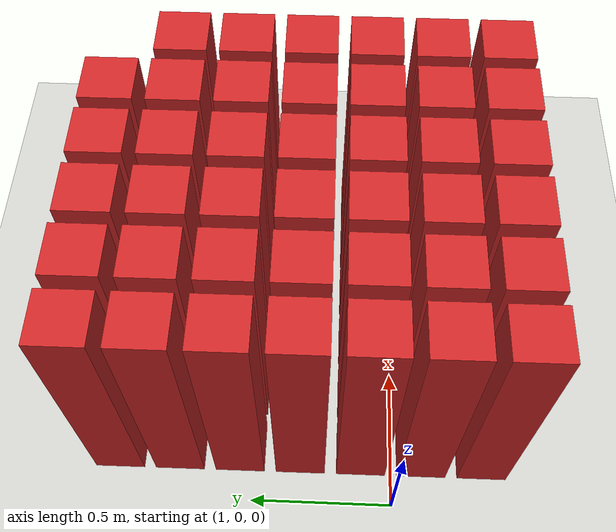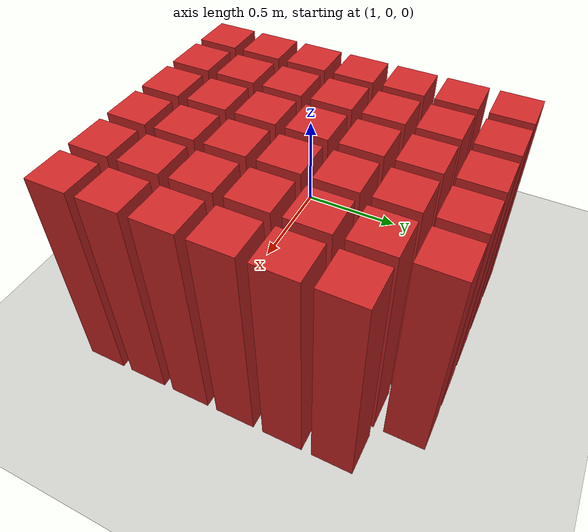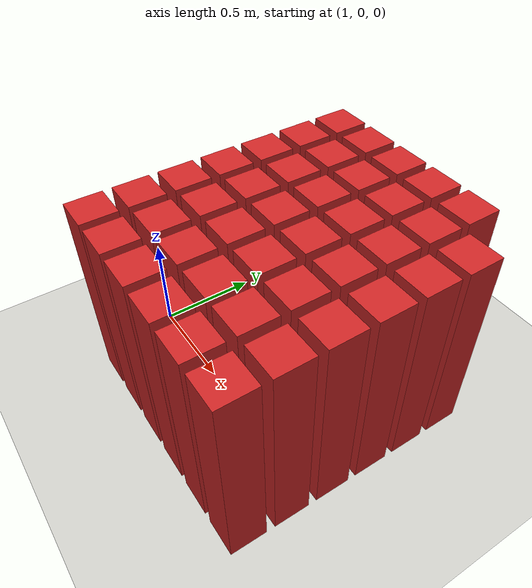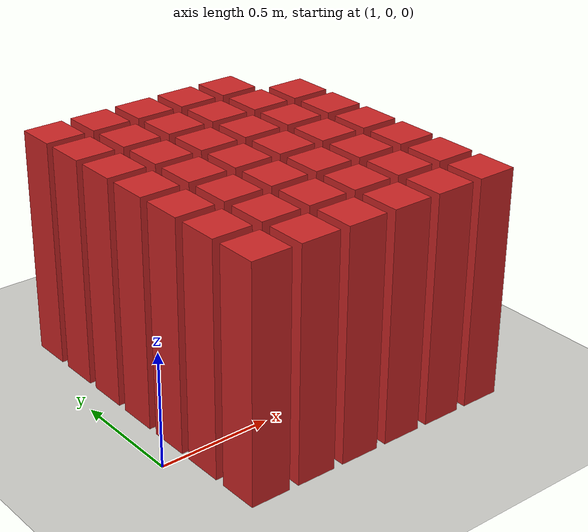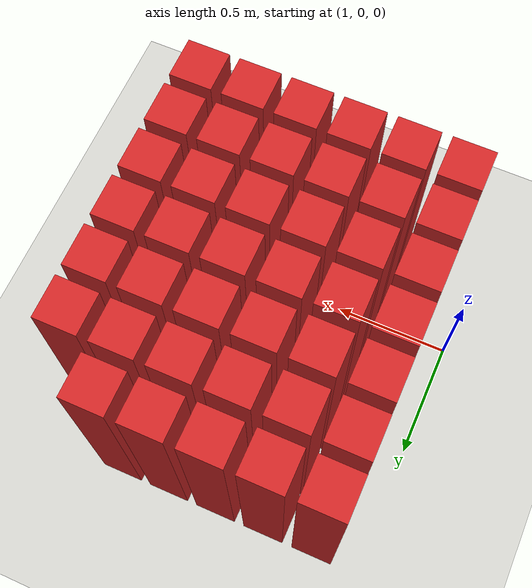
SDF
<sdf version="1.7">
 <world name="default">
  <model name="ground_plane">
   <static>1</static>
   <link name="link">
    <collision name="collision">
     <geometry><plane><normal>0 0 1</normal><size>100 100</size></plane></geometry>
     <surface>
      <contact><collide_bitmask>65535</collide_bitmask></contact>
      <friction><ode><mu>100</mu><mu2>50</mu2></ode></friction>
     </surface>
    </collision>
    <visual name="visual">
     <cast_shadows>0</cast_shadows>
     <geometry><plane><normal>0 0 1</normal><size>100 100</size></plane></geometry>
     <material>
      <script><uri>file://media/materials/scripts/gazebo.material</uri><name>Gazebo/CeilingTiled</name></script>
     </material>
    </visual>
   </link>
  </model>
  <model name="wall247">
   <link name="link">
    <pose>0 0 0.5 0 -0 0</pose>
    <inertial>
     <mass>0.5167</mass>
     <inertia>
      <ixx>0.000861167</ixx>
      <ixy>0</ixy>
      <ixz>0</ixz>
      <iyy>0.000861167</iyy>
      <iyz>0</iyz>
      <izz>0.000861167</izz>
     </inertia>
    </inertial>
    <collision name="collision">
     <geometry><box><size>0.21 0.21 1</size></box></geometry>
     <surface>
      <contact>
       <poissons_ratio>0.347</poissons_ratio>
       <elastic_modulus>8.8e+09</elastic_modulus>
       <ode><kp>100000</kp><kd>100</kd><max_vel>100</max_vel><min_depth>0.001</min_depth></ode>
      </contact>
      <friction>
       <torsional>
        <coefficient>1</coefficient>
        <use_patch_radius>0</use_patch_radius>
        <surface_radius>0.01</surface_radius>
       </torsional>
      </friction>
     </surface>
    </collision>
    <visual name="visual">
     <geometry><box><size>0.175 0.175 1</size></box></geometry>
     <material>
      <script><uri>file://media/materials/scripts/gazebo.material</uri><name>Gazebo/Red</name></script>
     </material>
    </visual>
   </link>
   <pose>1.19565 -0.326087 0 0 -0 0</pose>
  </model>
  <model name="wall248">
   <link name="link">
    <pose>0 0 0.5 0 -0 0</pose>
    <inertial>
     <mass>0.5167</mass>
     <inertia>
      <ixx>0.000861167</ixx>
      <ixy>0</ixy>
      <ixz>0</ixz>
      <iyy>0.000861167</iyy>
      <iyz>0</iyz>
      <izz>0.000861167</izz>
     </inertia>
    </inertial>
    <collision name="collision">
     <geometry><box><size>0.21 0.21 1</size></box></geometry>
     <surface>
      <contact>
       <poissons_ratio>0.347</poissons_ratio>
       <elastic_modulus>8.8e+09</elastic_modulus>
       <ode><kp>100000</kp><kd>100</kd><max_vel>100</max_vel><min_depth>0.001</min_depth></ode>
      </contact>
      <friction>
       <torsional>
        <coefficient>1</coefficient>
        <use_patch_radius>0</use_patch_radius>
        <surface_radius>0.01</surface_radius>
       </torsional>
      </friction>
     </surface>
    </collision>
    <visual name="visual">
     <geometry><box><size>0.175 0.175 1</size></box></geometry>
     <material>
      <script><uri>file://media/materials/scripts/gazebo.material</uri><name>Gazebo/Red</name></script>
     </material>
    </visual>
   </link>
   <pose>1.41304 -0.326087 0 0 -0 0</pose>
  </model>
  <model name="wall249">
   <link name="link">
    <pose>0 0 0.5 0 -0 0</pose>
    <inertial>
     <mass>0.5167</mass>
     <inertia>
      <ixx>0.000861167</ixx>
      <ixy>0</ixy>
      <ixz>0</ixz>
      <iyy>0.000861167</iyy>
      <iyz>0</iyz>
      <izz>0.000861167</izz>
     </inertia>
    </inertial>
    <collision name="collision">
     <geometry><box><size>0.21 0.21 1</size></box></geometry>
     <surface>
      <contact>
       <poissons_ratio>0.347</poissons_ratio>
       <elastic_modulus>8.8e+09</elastic_modulus>
       <ode><kp>100000</kp><kd>100</kd><max_vel>100</max_vel><min_depth>0.001</min_depth></ode>
      </contact>
      <friction>
       <torsional>
        <coefficient>1</coefficient>
        <use_patch_radius>0</use_patch_radius>
        <surface_radius>0.01</surface_radius>
       </torsional>
      </friction>
     </surface>
    </collision>
    <visual name="visual">
     <geometry><box><size>0.175 0.175 1</size></box></geometry>
     <material>
      <script><uri>file://media/materials/scripts/gazebo.material</uri><name>Gazebo/Red</name></script>
     </material>
    </visual>
   </link>
   <pose>1.63043 -0.326087 0 0 -0 0</pose>
  </model>
  <model name="wall250">
   <link name="link">
    <pose>0 0 0.5 0 -0 0</pose>
    <inertial>
     <mass>0.5167</mass>
     <inertia>
      <ixx>0.000861167</ixx>
      <ixy>0</ixy>
      <ixz>0</ixz>
      <iyy>0.000861167</iyy>
      <iyz>0</iyz>
      <izz>0.000861167</izz>
     </inertia>
    </inertial>
    <collision name="collision">
     <geometry><box><size>0.21 0.21 1</size></box></geometry>
     <surface>
      <contact>
       <poissons_ratio>0.347</poissons_ratio>
       <elastic_modulus>8.8e+09</elastic_modulus>
       <ode><kp>100000</kp><kd>100</kd><max_vel>100</max_vel><min_depth>0.001</min_depth></ode>
      </contact>
      <friction>
       <torsional>
        <coefficient>1</coefficient>
        <use_patch_radius>0</use_patch_radius>
        <surface_radius>0.01</surface_radius>
       </torsional>
      </friction>
     </surface>
    </collision>
    <visual name="visual">
     <geometry><box><size>0.175 0.175 1</size></box></geometry>
     <material>
      <script><uri>file://media/materials/scripts/gazebo.material</uri><name>Gazebo/Red</name></script>
     </material>
    </visual>
   </link>
   <pose>1.84783 -0.326087 0 0 -0 0</pose>
  </model>
  <model name="wall251">
   <link name="link">
    <pose>0 0 0.5 0 -0 0</pose>
    <inertial>
     <mass>0.5167</mass>
     <inertia>
      <ixx>0.000861167</ixx>
      <ixy>0</ixy>
      <ixz>0</ixz>
      <iyy>0.000861167</iyy>
      <iyz>0</iyz>
      <izz>0.000861167</izz>
     </inertia>
    </inertial>
    <collision name="collision">
     <geometry><box><size>0.21 0.21 1</size></box></geometry>
     <surface>
      <contact>
       <poissons_ratio>0.347</poissons_ratio>
       <elastic_modulus>8.8e+09</elastic_modulus>
       <ode><kp>100000</kp><kd>100</kd><max_vel>100</max_vel><min_depth>0.001</min_depth></ode>
      </contact>
      <friction>
       <torsional>
        <coefficient>1</coefficient>
        <use_patch_radius>0</use_patch_radius>
        <surface_radius>0.01</surface_radius>
       </torsional>
      </friction>
     </surface>
    </collision>
    <visual name="visual">
     <geometry><box><size>0.175 0.175 1</size></box></geometry>
     <material>
      <script><uri>file://media/materials/scripts/gazebo.material</uri><name>Gazebo/Red</name></script>
     </material>
    </visual>
   </link>
   <pose>2.06522 -0.326087 0 0 -0 0</pose>
  </model>
  <model name="wall252">
   <link name="link">
    <pose>0 0 0.5 0 -0 0</pose>
    <inertial>
     <mass>0.5167</mass>
     <inertia>
      <ixx>0.000861167</ixx>
      <ixy>0</ixy>
      <ixz>0</ixz>
      <iyy>0.000861167</iyy>
      <iyz>0</iyz>
      <izz>0.000861167</izz>
     </inertia>
    </inertial>
    <collision name="collision">
     <geometry><box><size>0.21 0.21 1</size></box></geometry>
     <surface>
      <contact>
       <poissons_ratio>0.347</poissons_ratio>
       <elastic_modulus>8.8e+09</elastic_modulus>
       <ode><kp>100000</kp><kd>100</kd><max_vel>100</max_vel><min_depth>0.001</min_depth></ode>
      </contact>
      <friction>
       <torsional>
        <coefficient>1</coefficient>
        <use_patch_radius>0</use_patch_radius>
        <surface_radius>0.01</surface_radius>
       </torsional>
      </friction>
     </surface>
    </collision>
    <visual name="visual">
     <geometry><box><size>0.175 0.175 1</size></box></geometry>
     <material>
      <script><uri>file://media/materials/scripts/gazebo.material</uri><name>Gazebo/Red</name></script>
     </material>
    </visual>
   </link>
   <pose>2.28261 -0.326087 0 0 -0 0</pose>
  </model>
  <model name="wall270">
   <link name="link">
    <pose>0 0 0.5 0 -0 0</pose>
    <inertial>
     <mass>0.5167</mass>
     <inertia>
      <ixx>0.000861167</ixx>
      <ixy>0</ixy>
      <ixz>0</ixz>
      <iyy>0.000861167</iyy>
      <iyz>0</iyz>
      <izz>0.000861167</izz>
     </inertia>
    </inertial>
    <collision name="collision">
     <geometry><box><size>0.21 0.21 1</size></box></geometry>
     <surface>
      <contact>
       <poissons_ratio>0.347</poissons_ratio>
       <elastic_modulus>8.8e+09</elastic_modulus>
       <ode><kp>100000</kp><kd>100</kd><max_vel>100</max_vel><min_depth>0.001</min_depth></ode>
      </contact>
      <friction>
       <torsional>
        <coefficient>1</coefficient>
        <use_patch_radius>0</use_patch_radius>
        <surface_radius>0.01</surface_radius>
       </torsional>
      </friction>
     </surface>
    </collision>
    <visual name="visual">
     <geometry><box><size>0.175 0.175 1</size></box></geometry>
     <material>
      <script><uri>file://media/materials/scripts/gazebo.material</uri><name>Gazebo/Red</name></script>
     </material>
    </visual>
   </link>
   <pose>1.19565 -0.108696 0 0 -0 0</pose>
  </model>
  <model name="wall271">
   <link name="link">
    <pose>0 0 0.5 0 -0 0</pose>
    <inertial>
     <mass>0.5167</mass>
     <inertia>
      <ixx>0.000861167</ixx>
      <ixy>0</ixy>
      <ixz>0</ixz>
      <iyy>0.000861167</iyy>
      <iyz>0</iyz>
      <izz>0.000861167</izz>
     </inertia>
    </inertial>
    <collision name="collision">
     <geometry><box><size>0.21 0.21 1</size></box></geometry>
     <surface>
      <contact>
       <poissons_ratio>0.347</poissons_ratio>
       <elastic_modulus>8.8e+09</elastic_modulus>
       <ode><kp>100000</kp><kd>100</kd><max_vel>100</max_vel><min_depth>0.001</min_depth></ode>
      </contact>
      <friction>
       <torsional>
        <coefficient>1</coefficient>
        <use_patch_radius>0</use_patch_radius>
        <surface_radius>0.01</surface_radius>
       </torsional>
      </friction>
     </surface>
    </collision>
    <visual name="visual">
     <geometry><box><size>0.175 0.175 1</size></box></geometry>
     <material>
      <script><uri>file://media/materials/scripts/gazebo.material</uri><name>Gazebo/Red</name></script>
     </material>
    </visual>
   </link>
   <pose>1.41304 -0.108696 0 0 -0 0</pose>
  </model>
  <model name="wall272">
   <link name="link">
    <pose>0 0 0.5 0 -0 0</pose>
    <inertial>
     <mass>0.5167</mass>
     <inertia>
      <ixx>0.000861167</ixx>
      <ixy>0</ixy>
      <ixz>0</ixz>
      <iyy>0.000861167</iyy>
      <iyz>0</iyz>
      <izz>0.000861167</izz>
     </inertia>
    </inertial>
    <collision name="collision">
     <geometry><box><size>0.21 0.21 1</size></box></geometry>
     <surface>
      <contact>
       <poissons_ratio>0.347</poissons_ratio>
       <elastic_modulus>8.8e+09</elastic_modulus>
       <ode><kp>100000</kp><kd>100</kd><max_vel>100</max_vel><min_depth>0.001</min_depth></ode>
      </contact>
      <friction>
       <torsional>
        <coefficient>1</coefficient>
        <use_patch_radius>0</use_patch_radius>
        <surface_radius>0.01</surface_radius>
       </torsional>
      </friction>
     </surface>
    </collision>
    <visual name="visual">
     <geometry><box><size>0.175 0.175 1</size></box></geometry>
     <material>
      <script><uri>file://media/materials/scripts/gazebo.material</uri><name>Gazebo/Red</name></script>
     </material>
    </visual>
   </link>
   <pose>1.63043 -0.108696 0 0 -0 0</pose>
  </model>
  <model name="wall273">
   <link name="link">
    <pose>0 0 0.5 0 -0 0</pose>
    <inertial>
     <mass>0.5167</mass>
     <inertia>
      <ixx>0.000861167</ixx>
      <ixy>0</ixy>
      <ixz>0</ixz>
      <iyy>0.000861167</iyy>
      <iyz>0</iyz>
      <izz>0.000861167</izz>
     </inertia>
    </inertial>
    <collision name="collision">
     <geometry><box><size>0.21 0.21 1</size></box></geometry>
     <surface>
      <contact>
       <poissons_ratio>0.347</poissons_ratio>
       <elastic_modulus>8.8e+09</elastic_modulus>
       <ode><kp>100000</kp><kd>100</kd><max_vel>100</max_vel><min_depth>0.001</min_depth></ode>
      </contact>
      <friction>
       <torsional>
        <coefficient>1</coefficient>
        <use_patch_radius>0</use_patch_radius>
        <surface_radius>0.01</surface_radius>
       </torsional>
      </friction>
     </surface>
    </collision>
    <visual name="visual">
     <geometry><box><size>0.175 0.175 1</size></box></geometry>
     <material>
      <script><uri>file://media/materials/scripts/gazebo.material</uri><name>Gazebo/Red</name></script>
     </material>
    </visual>
   </link>
   <pose>1.84783 -0.108696 0 0 -0 0</pose>
  </model>
  <model name="wall274">
   <link name="link">
    <pose>0 0 0.5 0 -0 0</pose>
    <inertial>
     <mass>0.5167</mass>
     <inertia>
      <ixx>0.000861167</ixx>
      <ixy>0</ixy>
      <ixz>0</ixz>
      <iyy>0.000861167</iyy>
      <iyz>0</iyz>
      <izz>0.000861167</izz>
     </inertia>
    </inertial>
    <collision name="collision">
     <geometry><box><size>0.21 0.21 1</size></box></geometry>
     <surface>
      <contact>
       <poissons_ratio>0.347</poissons_ratio>
       <elastic_modulus>8.8e+09</elastic_modulus>
       <ode><kp>100000</kp><kd>100</kd><max_vel>100</max_vel><min_depth>0.001</min_depth></ode>
      </contact>
      <friction>
       <torsional>
        <coefficient>1</coefficient>
        <use_patch_radius>0</use_patch_radius>
        <surface_radius>0.01</surface_radius>
       </torsional>
      </friction>
     </surface>
    </collision>
    <visual name="visual">
     <geometry><box><size>0.175 0.175 1</size></box></geometry>
     <material>
      <script><uri>file://media/materials/scripts/gazebo.material</uri><name>Gazebo/Red</name></script>
     </material>
    </visual>
   </link>
   <pose>2.06522 -0.108696 0 0 -0 0</pose>
  </model>
  <model name="wall275">
   <link name="link">
    <pose>0 0 0.5 0 -0 0</pose>
    <inertial>
     <mass>0.5167</mass>
     <inertia>
      <ixx>0.000861167</ixx>
      <ixy>0</ixy>
      <ixz>0</ixz>
      <iyy>0.000861167</iyy>
      <iyz>0</iyz>
      <izz>0.000861167</izz>
     </inertia>
    </inertial>
    <collision name="collision">
     <geometry><box><size>0.21 0.21 1</size></box></geometry>
     <surface>
      <contact>
       <poissons_ratio>0.347</poissons_ratio>
       <elastic_modulus>8.8e+09</elastic_modulus>
       <ode><kp>100000</kp><kd>100</kd><max_vel>100</max_vel><min_depth>0.001</min_depth></ode>
      </contact>
      <friction>
       <torsional>
        <coefficient>1</coefficient>
        <use_patch_radius>0</use_patch_radius>
        <surface_radius>0.01</surface_radius>
       </torsional>
      </friction>
     </surface>
    </collision>
    <visual name="visual">
     <geometry><box><size>0.175 0.175 1</size></box></geometry>
     <material>
      <script><uri>file://media/materials/scripts/gazebo.material</uri><name>Gazebo/Red</name></script>
     </material>
    </visual>
   </link>
   <pose>2.28261 -0.108696 0 0 -0 0</pose>
  </model>
  <model name="wall293">
   <link name="link">
    <pose>0 0 0.5 0 -0 0</pose>
    <inertial>
     <mass>0.5167</mass>
     <inertia>
      <ixx>0.000861167</ixx>
      <ixy>0</ixy>
      <ixz>0</ixz>
      <iyy>0.000861167</iyy>
      <iyz>0</iyz>
      <izz>0.000861167</izz>
     </inertia>
    </inertial>
    <collision name="collision">
     <geometry><box><size>0.21 0.21 1</size></box></geometry>
     <surface>
      <contact>
       <poissons_ratio>0.347</poissons_ratio>
       <elastic_modulus>8.8e+09</elastic_modulus>
       <ode><kp>100000</kp><kd>100</kd><max_vel>100</max_vel><min_depth>0.001</min_depth></ode>
      </contact>
      <friction>
       <torsional>
        <coefficient>1</coefficient>
        <use_patch_radius>0</use_patch_radius>
        <surface_radius>0.01</surface_radius>
       </torsional>
      </friction>
     </surface>
    </collision>
    <visual name="visual">
     <geometry><box><size>0.175 0.175 1</size></box></geometry>
     <material>
      <script><uri>file://media/materials/scripts/gazebo.material</uri><name>Gazebo/Red</name></script>
     </material>
    </visual>
   </link>
   <pose>1.19565 0.108696 0 0 -0 0</pose>
  </model>
  <model name="wall294">
   <link name="link">
    <pose>0 0 0.5 0 -0 0</pose>
    <inertial>
     <mass>0.5167</mass>
     <inertia>
      <ixx>0.000861167</ixx>
      <ixy>0</ixy>
      <ixz>0</ixz>
      <iyy>0.000861167</iyy>
      <iyz>0</iyz>
      <izz>0.000861167</izz>
     </inertia>
    </inertial>
    <collision name="collision">
     <geometry><box><size>0.21 0.21 1</size></box></geometry>
     <surface>
      <contact>
       <poissons_ratio>0.347</poissons_ratio>
       <elastic_modulus>8.8e+09</elastic_modulus>
       <ode><kp>100000</kp><kd>100</kd><max_vel>100</max_vel><min_depth>0.001</min_depth></ode>
      </contact>
      <friction>
       <torsional>
        <coefficient>1</coefficient>
        <use_patch_radius>0</use_patch_radius>
        <surface_radius>0.01</surface_radius>
       </torsional>
      </friction>
     </surface>
    </collision>
    <visual name="visual">
     <geometry><box><size>0.175 0.175 1</size></box></geometry>
     <material>
      <script><uri>file://media/materials/scripts/gazebo.material</uri><name>Gazebo/Red</name></script>
     </material>
    </visual>
   </link>
   <pose>1.41304 0.108696 0 0 -0 0</pose>
  </model>
  <model name="wall295">
   <link name="link">
    <pose>0 0 0.5 0 -0 0</pose>
    <inertial>
     <mass>0.5167</mass>
     <inertia>
      <ixx>0.000861167</ixx>
      <ixy>0</ixy>
      <ixz>0</ixz>
      <iyy>0.000861167</iyy>
      <iyz>0</iyz>
      <izz>0.000861167</izz>
     </inertia>
    </inertial>
    <collision name="collision">
     <geometry><box><size>0.21 0.21 1</size></box></geometry>
     <surface>
      <contact>
       <poissons_ratio>0.347</poissons_ratio>
       <elastic_modulus>8.8e+09</elastic_modulus>
       <ode><kp>100000</kp><kd>100</kd><max_vel>100</max_vel><min_depth>0.001</min_depth></ode>
      </contact>
      <friction>
       <torsional>
        <coefficient>1</coefficient>
        <use_patch_radius>0</use_patch_radius>
        <surface_radius>0.01</surface_radius>
       </torsional>
      </friction>
     </surface>
    </collision>
    <visual name="visual">
     <geometry><box><size>0.175 0.175 1</size></box></geometry>
     <material>
      <script><uri>file://media/materials/scripts/gazebo.material</uri><name>Gazebo/Red</name></script>
     </material>
    </visual>
   </link>
   <pose>1.63043 0.108696 0 0 -0 0</pose>
  </model>
  <model name="wall296">
   <link name="link">
    <pose>0 0 0.5 0 -0 0</pose>
    <inertial>
     <mass>0.5167</mass>
     <inertia>
      <ixx>0.000861167</ixx>
      <ixy>0</ixy>
      <ixz>0</ixz>
      <iyy>0.000861167</iyy>
      <iyz>0</iyz>
      <izz>0.000861167</izz>
     </inertia>
    </inertial>
    <collision name="collision">
     <geometry><box><size>0.21 0.21 1</size></box></geometry>
     <surface>
      <contact>
       <poissons_ratio>0.347</poissons_ratio>
       <elastic_modulus>8.8e+09</elastic_modulus>
       <ode><kp>100000</kp><kd>100</kd><max_vel>100</max_vel><min_depth>0.001</min_depth></ode>
      </contact>
      <friction>
       <torsional>
        <coefficient>1</coefficient>
        <use_patch_radius>0</use_patch_radius>
        <surface_radius>0.01</surface_radius>
       </torsional>
      </friction>
     </surface>
    </collision>
    <visual name="visual">
     <geometry><box><size>0.175 0.175 1</size></box></geometry>
     <material>
      <script><uri>file://media/materials/scripts/gazebo.material</uri><name>Gazebo/Red</name></script>
     </material>
    </visual>
   </link>
   <pose>1.84783 0.108696 0 0 -0 0</pose>
  </model>
  <model name="wall297">
   <link name="link">
    <pose>0 0 0.5 0 -0 0</pose>
    <inertial>
     <mass>0.5167</mass>
     <inertia>
      <ixx>0.000861167</ixx>
      <ixy>0</ixy>
      <ixz>0</ixz>
      <iyy>0.000861167</iyy>
      <iyz>0</iyz>
      <izz>0.000861167</izz>
     </inertia>
    </inertial>
    <collision name="collision">
     <geometry><box><size>0.21 0.21 1</size></box></geometry>
     <surface>
      <contact>
       <poissons_ratio>0.347</poissons_ratio>
       <elastic_modulus>8.8e+09</elastic_modulus>
       <ode><kp>100000</kp><kd>100</kd><max_vel>100</max_vel><min_depth>0.001</min_depth></ode>
      </contact>
      <friction>
       <torsional>
        <coefficient>1</coefficient>
        <use_patch_radius>0</use_patch_radius>
        <surface_radius>0.01</surface_radius>
       </torsional>
      </friction>
     </surface>
    </collision>
    <visual name="visual">
     <geometry><box><size>0.175 0.175 1</size></box></geometry>
     <material>
      <script><uri>file://media/materials/scripts/gazebo.material</uri><name>Gazebo/Red</name></script>
     </material>
    </visual>
   </link>
   <pose>2.06522 0.108696 0 0 -0 0</pose>
  </model>
  <model name="wall298">
   <link name="link">
    <pose>0 0 0.5 0 -0 0</pose>
    <inertial>
     <mass>0.5167</mass>
     <inertia>
      <ixx>0.000861167</ixx>
      <ixy>0</ixy>
      <ixz>0</ixz>
      <iyy>0.000861167</iyy>
      <iyz>0</iyz>
      <izz>0.000861167</izz>
     </inertia>
    </inertial>
    <collision name="collision">
     <geometry><box><size>0.21 0.21 1</size></box></geometry>
     <surface>
      <contact>
       <poissons_ratio>0.347</poissons_ratio>
       <elastic_modulus>8.8e+09</elastic_modulus>
       <ode><kp>100000</kp><kd>100</kd><max_vel>100</max_vel><min_depth>0.001</min_depth></ode>
      </contact>
      <friction>
       <torsional>
        <coefficient>1</coefficient>
        <use_patch_radius>0</use_patch_radius>
        <surface_radius>0.01</surface_radius>
       </torsional>
      </friction>
     </surface>
    </collision>
    <visual name="visual">
     <geometry><box><size>0.175 0.175 1</size></box></geometry>
     <material>
      <script><uri>file://media/materials/scripts/gazebo.material</uri><name>Gazebo/Red</name></script>
     </material>
    </visual>
   </link>
   <pose>2.28261 0.108696 0 0 -0 0</pose>
  </model>
  <model name="wall316">
   <link name="link">
    <pose>0 0 0.5 0 -0 0</pose>
    <inertial>
     <mass>0.5167</mass>
     <inertia>
      <ixx>0.000861167</ixx>
      <ixy>0</ixy>
      <ixz>0</ixz>
      <iyy>0.000861167</iyy>
      <iyz>0</iyz>
      <izz>0.000861167</izz>
     </inertia>
    </inertial>
    <collision name="collision">
     <geometry><box><size>0.21 0.21 1</size></box></geometry>
     <surface>
      <contact>
       <poissons_ratio>0.347</poissons_ratio>
       <elastic_modulus>8.8e+09</elastic_modulus>
       <ode><kp>100000</kp><kd>100</kd><max_vel>100</max_vel><min_depth>0.001</min_depth></ode>
      </contact>
      <friction>
       <torsional>
        <coefficient>1</coefficient>
        <use_patch_radius>0</use_patch_radius>
        <surface_radius>0.01</surface_radius>
       </torsional>
      </friction>
     </surface>
    </collision>
    <visual name="visual">
     <geometry><box><size>0.175 0.175 1</size></box></geometry>
     <material>
      <script><uri>file://media/materials/scripts/gazebo.material</uri><name>Gazebo/Red</name></script>
     </material>
    </visual>
   </link>
   <pose>1.19565 0.326087 0 0 -0 0</pose>
  </model>
  <model name="wall317">
   <link name="link">
    <pose>0 0 0.5 0 -0 0</pose>
    <inertial>
     <mass>0.5167</mass>
     <inertia>
      <ixx>0.000861167</ixx>
      <ixy>0</ixy>
      <ixz>0</ixz>
      <iyy>0.000861167</iyy>
      <iyz>0</iyz>
      <izz>0.000861167</izz>
     </inertia>
    </inertial>
    <collision name="collision">
     <geometry><box><size>0.21 0.21 1</size></box></geometry>
     <surface>
      <contact>
       <poissons_ratio>0.347</poissons_ratio>
       <elastic_modulus>8.8e+09</elastic_modulus>
       <ode><kp>100000</kp><kd>100</kd><max_vel>100</max_vel><min_depth>0.001</min_depth></ode>
      </contact>
      <friction>
       <torsional>
        <coefficient>1</coefficient>
        <use_patch_radius>0</use_patch_radius>
        <surface_radius>0.01</surface_radius>
       </torsional>
      </friction>
     </surface>
    </collision>
    <visual name="visual">
     <geometry><box><size>0.175 0.175 1</size></box></geometry>
     <material>
      <script><uri>file://media/materials/scripts/gazebo.material</uri><name>Gazebo/Red</name></script>
     </material>
    </visual>
   </link>
   <pose>1.41304 0.326087 0 0 -0 0</pose>
  </model>
  <model name="wall318">
   <link name="link">
    <pose>0 0 0.5 0 -0 0</pose>
    <inertial>
     <mass>0.5167</mass>
     <inertia>
      <ixx>0.000861167</ixx>
      <ixy>0</ixy>
      <ixz>0</ixz>
      <iyy>0.000861167</iyy>
      <iyz>0</iyz>
      <izz>0.000861167</izz>
     </inertia>
    </inertial>
    <collision name="collision">
     <geometry><box><size>0.21 0.21 1</size></box></geometry>
     <surface>
      <contact>
       <poissons_ratio>0.347</poissons_ratio>
       <elastic_modulus>8.8e+09</elastic_modulus>
       <ode><kp>100000</kp><kd>100</kd><max_vel>100</max_vel><min_depth>0.001</min_depth></ode>
      </contact>
      <friction>
       <torsional>
        <coefficient>1</coefficient>
        <use_patch_radius>0</use_patch_radius>
        <surface_radius>0.01</surface_radius>
       </torsional>
      </friction>
     </surface>
    </collision>
    <visual name="visual">
     <geometry><box><size>0.175 0.175 1</size></box></geometry>
     <material>
      <script><uri>file://media/materials/scripts/gazebo.material</uri><name>Gazebo/Red</name></script>
     </material>
    </visual>
   </link>
   <pose>1.63043 0.326087 0 0 -0 0</pose>
  </model>
  <model name="wall319">
   <link name="link">
    <pose>0 0 0.5 0 -0 0</pose>
    <inertial>
     <mass>0.5167</mass>
     <inertia>
      <ixx>0.000861167</ixx>
      <ixy>0</ixy>
      <ixz>0</ixz>
      <iyy>0.000861167</iyy>
      <iyz>0</iyz>
      <izz>0.000861167</izz>
     </inertia>
    </inertial>
    <collision name="collision">
     <geometry><box><size>0.21 0.21 1</size></box></geometry>
     <surface>
      <contact>
       <poissons_ratio>0.347</poissons_ratio>
       <elastic_modulus>8.8e+09</elastic_modulus>
       <ode><kp>100000</kp><kd>100</kd><max_vel>100</max_vel><min_depth>0.001</min_depth></ode>
      </contact>
      <friction>
       <torsional>
        <coefficient>1</coefficient>
        <use_patch_radius>0</use_patch_radius>
        <surface_radius>0.01</surface_radius>
       </torsional>
      </friction>
     </surface>
    </collision>
    <visual name="visual">
     <geometry><box><size>0.175 0.175 1</size></box></geometry>
     <material>
      <script><uri>file://media/materials/scripts/gazebo.material</uri><name>Gazebo/Red</name></script>
     </material>
    </visual>
   </link>
   <pose>1.84783 0.326087 0 0 -0 0</pose>
  </model>
  <model name="wall320">
   <link name="link">
    <pose>0 0 0.5 0 -0 0</pose>
    <inertial>
     <mass>0.5167</mass>
     <inertia>
      <ixx>0.000861167</ixx>
      <ixy>0</ixy>
      <ixz>0</ixz>
      <iyy>0.000861167</iyy>
      <iyz>0</iyz>
      <izz>0.000861167</izz>
     </inertia>
    </inertial>
    <collision name="collision">
     <geometry><box><size>0.21 0.21 1</size></box></geometry>
     <surface>
      <contact>
       <poissons_ratio>0.347</poissons_ratio>
       <elastic_modulus>8.8e+09</elastic_modulus>
       <ode><kp>100000</kp><kd>100</kd><max_vel>100</max_vel><min_depth>0.001</min_depth></ode>
      </contact>
      <friction>
       <torsional>
        <coefficient>1</coefficient>
        <use_patch_radius>0</use_patch_radius>
        <surface_radius>0.01</surface_radius>
       </torsional>
      </friction>
     </surface>
    </collision>
    <visual name="visual">
     <geometry><box><size>0.175 0.175 1</size></box></geometry>
     <material>
      <script><uri>file://media/materials/scripts/gazebo.material</uri><name>Gazebo/Red</name></script>
     </material>
    </visual>
   </link>
   <pose>2.06522 0.326087 0 0 -0 0</pose>
  </model>
  <model name="wall321">
   <link name="link">
    <pose>0 0 0.5 0 -0 0</pose>
    <inertial>
     <mass>0.5167</mass>
     <inertia>
      <ixx>0.000861167</ixx>
      <ixy>0</ixy>
      <ixz>0</ixz>
      <iyy>0.000861167</iyy>
      <iyz>0</iyz>
      <izz>0.000861167</izz>
     </inertia>
    </inertial>
    <collision name="collision">
     <geometry><box><size>0.21 0.21 1</size></box></geometry>
     <surface>
      <contact>
       <poissons_ratio>0.347</poissons_ratio>
       <elastic_modulus>8.8e+09</elastic_modulus>
       <ode><kp>100000</kp><kd>100</kd><max_vel>100</max_vel><min_depth>0.001</min_depth></ode>
      </contact>
      <friction>
       <torsional>
        <coefficient>1</coefficient>
        <use_patch_radius>0</use_patch_radius>
        <surface_radius>0.01</surface_radius>
       </torsional>
      </friction>
     </surface>
    </collision>
    <visual name="visual">
     <geometry><box><size>0.175 0.175 1</size></box></geometry>
     <material>
      <script><uri>file://media/materials/scripts/gazebo.material</uri><name>Gazebo/Red</name></script>
     </material>
    </visual>
   </link>
   <pose>2.28261 0.326087 0 0 -0 0</pose>
  </model>
  <model name="wall339">
   <link name="link">
    <pose>0 0 0.5 0 -0 0</pose>
    <inertial>
     <mass>0.5167</mass>
     <inertia>
      <ixx>0.000861167</ixx>
      <ixy>0</ixy>
      <ixz>0</ixz>
      <iyy>0.000861167</iyy>
      <iyz>0</iyz>
      <izz>0.000861167</izz>
     </inertia>
    </inertial>
    <collision name="collision">
     <geometry><box><size>0.21 0.21 1</size></box></geometry>
     <surface>
      <contact>
       <poissons_ratio>0.347</poissons_ratio>
       <elastic_modulus>8.8e+09</elastic_modulus>
       <ode><kp>100000</kp><kd>100</kd><max_vel>100</max_vel><min_depth>0.001</min_depth></ode>
      </contact>
      <friction>
       <torsional>
        <coefficient>1</coefficient>
        <use_patch_radius>0</use_patch_radius>
        <surface_radius>0.01</surface_radius>
       </torsional>
      </friction>
     </surface>
    </collision>
    <visual name="visual">
     <geometry><box><size>0.175 0.175 1</size></box></geometry>
     <material>
      <script><uri>file://media/materials/scripts/gazebo.material</uri><name>Gazebo/Red</name></script>
     </material>
    </visual>
   </link>
   <pose>1.19565 0.543478 0 0 -0 0</pose>
  </model>
  <model name="wall340">
   <link name="link">
    <pose>0 0 0.5 0 -0 0</pose>
    <inertial>
     <mass>0.5167</mass>
     <inertia>
      <ixx>0.000861167</ixx>
      <ixy>0</ixy>
      <ixz>0</ixz>
      <iyy>0.000861167</iyy>
      <iyz>0</iyz>
      <izz>0.000861167</izz>
     </inertia>
    </inertial>
    <collision name="collision">
     <geometry><box><size>0.21 0.21 1</size></box></geometry>
     <surface>
      <contact>
       <poissons_ratio>0.347</poissons_ratio>
       <elastic_modulus>8.8e+09</elastic_modulus>
       <ode><kp>100000</kp><kd>100</kd><max_vel>100</max_vel><min_depth>0.001</min_depth></ode>
      </contact>
      <friction>
       <torsional>
        <coefficient>1</coefficient>
        <use_patch_radius>0</use_patch_radius>
        <surface_radius>0.01</surface_radius>
       </torsional>
      </friction>
     </surface>
    </collision>
    <visual name="visual">
     <geometry><box><size>0.175 0.175 1</size></box></geometry>
     <material>
      <script><uri>file://media/materials/scripts/gazebo.material</uri><name>Gazebo/Red</name></script>
     </material>
    </visual>
   </link>
   <pose>1.41304 0.543478 0 0 -0 0</pose>
  </model>
  <model name="wall341">
   <link name="link">
    <pose>0 0 0.5 0 -0 0</pose>
    <inertial>
     <mass>0.5167</mass>
     <inertia>
      <ixx>0.000861167</ixx>
      <ixy>0</ixy>
      <ixz>0</ixz>
      <iyy>0.000861167</iyy>
      <iyz>0</iyz>
      <izz>0.000861167</izz>
     </inertia>
    </inertial>
    <collision name="collision">
     <geometry><box><size>0.21 0.21 1</size></box></geometry>
     <surface>
      <contact>
       <poissons_ratio>0.347</poissons_ratio>
       <elastic_modulus>8.8e+09</elastic_modulus>
       <ode><kp>100000</kp><kd>100</kd><max_vel>100</max_vel><min_depth>0.001</min_depth></ode>
      </contact>
      <friction>
       <torsional>
        <coefficient>1</coefficient>
        <use_patch_radius>0</use_patch_radius>
        <surface_radius>0.01</surface_radius>
       </torsional>
      </friction>
     </surface>
    </collision>
    <visual name="visual">
     <geometry><box><size>0.175 0.175 1</size></box></geometry>
     <material>
      <script><uri>file://media/materials/scripts/gazebo.material</uri><name>Gazebo/Red</name></script>
     </material>
    </visual>
   </link>
   <pose>1.63043 0.543478 0 0 -0 0</pose>
  </model>
  <model name="wall342">
   <link name="link">
    <pose>0 0 0.5 0 -0 0</pose>
    <inertial>
     <mass>0.5167</mass>
     <inertia>
      <ixx>0.000861167</ixx>
      <ixy>0</ixy>
      <ixz>0</ixz>
      <iyy>0.000861167</iyy>
      <iyz>0</iyz>
      <izz>0.000861167</izz>
     </inertia>
    </inertial>
    <collision name="collision">
     <geometry><box><size>0.21 0.21 1</size></box></geometry>
     <surface>
      <contact>
       <poissons_ratio>0.347</poissons_ratio>
       <elastic_modulus>8.8e+09</elastic_modulus>
       <ode><kp>100000</kp><kd>100</kd><max_vel>100</max_vel><min_depth>0.001</min_depth></ode>
      </contact>
      <friction>
       <torsional>
        <coefficient>1</coefficient>
        <use_patch_radius>0</use_patch_radius>
        <surface_radius>0.01</surface_radius>
       </torsional>
      </friction>
     </surface>
    </collision>
    <visual name="visual">
     <geometry><box><size>0.175 0.175 1</size></box></geometry>
     <material>
      <script><uri>file://media/materials/scripts/gazebo.material</uri><name>Gazebo/Red</name></script>
     </material>
    </visual>
   </link>
   <pose>1.84783 0.543478 0 0 -0 0</pose>
  </model>
  <model name="wall343">
   <link name="link">
    <pose>0 0 0.5 0 -0 0</pose>
    <inertial>
     <mass>0.5167</mass>
     <inertia>
      <ixx>0.000861167</ixx>
      <ixy>0</ixy>
      <ixz>0</ixz>
      <iyy>0.000861167</iyy>
      <iyz>0</iyz>
      <izz>0.000861167</izz>
     </inertia>
    </inertial>
    <collision name="collision">
     <geometry><box><size>0.21 0.21 1</size></box></geometry>
     <surface>
      <contact>
       <poissons_ratio>0.347</poissons_ratio>
       <elastic_modulus>8.8e+09</elastic_modulus>
       <ode><kp>100000</kp><kd>100</kd><max_vel>100</max_vel><min_depth>0.001</min_depth></ode>
      </contact>
      <friction>
       <torsional>
        <coefficient>1</coefficient>
        <use_patch_radius>0</use_patch_radius>
        <surface_radius>0.01</surface_radius>
       </torsional>
      </friction>
     </surface>
    </collision>
    <visual name="visual">
     <geometry><box><size>0.175 0.175 1</size></box></geometry>
     <material>
      <script><uri>file://media/materials/scripts/gazebo.material</uri><name>Gazebo/Red</name></script>
     </material>
    </visual>
   </link>
   <pose>2.06522 0.543478 0 0 -0 0</pose>
  </model>
  <model name="wall344">
   <link name="link">
    <pose>0 0 0.5 0 -0 0</pose>
    <inertial>
     <mass>0.5167</mass>
     <inertia>
      <ixx>0.000861167</ixx>
      <ixy>0</ixy>
      <ixz>0</ixz>
      <iyy>0.000861167</iyy>
      <iyz>0</iyz>
      <izz>0.000861167</izz>
     </inertia>
    </inertial>
    <collision name="collision">
     <geometry><box><size>0.21 0.21 1</size></box></geometry>
     <surface>
      <contact>
       <poissons_ratio>0.347</poissons_ratio>
       <elastic_modulus>8.8e+09</elastic_modulus>
       <ode><kp>100000</kp><kd>100</kd><max_vel>100</max_vel><min_depth>0.001</min_depth></ode>
      </contact>
      <friction>
       <torsional>
        <coefficient>1</coefficient>
        <use_patch_radius>0</use_patch_radius>
        <surface_radius>0.01</surface_radius>
       </torsional>
      </friction>
     </surface>
    </collision>
    <visual name="visual">
     <geometry><box><size>0.175 0.175 1</size></box></geometry>
     <material>
      <script><uri>file://media/materials/scripts/gazebo.material</uri><name>Gazebo/Red</name></script>
     </material>
    </visual>
   </link>
   <pose>2.28261 0.543478 0 0 -0 0</pose>
  </model>
  <model name="wall362">
   <link name="link">
    <pose>0 0 0.5 0 -0 0</pose>
    <inertial>
     <mass>0.5167</mass>
     <inertia>
      <ixx>0.000861167</ixx>
      <ixy>0</ixy>
      <ixz>0</ixz>
      <iyy>0.000861167</iyy>
      <iyz>0</iyz>
      <izz>0.000861167</izz>
     </inertia>
    </inertial>
    <collision name="collision">
     <geometry><box><size>0.21 0.21 1</size></box></geometry>
     <surface>
      <contact>
       <poissons_ratio>0.347</poissons_ratio>
       <elastic_modulus>8.8e+09</elastic_modulus>
       <ode><kp>100000</kp><kd>100</kd><max_vel>100</max_vel><min_depth>0.001</min_depth></ode>
      </contact>
      <friction>
       <torsional>
        <coefficient>1</coefficient>
        <use_patch_radius>0</use_patch_radius>
        <surface_radius>0.01</surface_radius>
       </torsional>
      </friction>
     </surface>
    </collision>
    <visual name="visual">
     <geometry><box><size>0.175 0.175 1</size></box></geometry>
     <material>
      <script><uri>file://media/materials/scripts/gazebo.material</uri><name>Gazebo/Red</name></script>
     </material>
    </visual>
   </link>
   <pose>1.19565 0.76087 0 0 -0 0</pose>
  </model>
  <model name="wall363">
   <link name="link">
    <pose>0 0 0.5 0 -0 0</pose>
    <inertial>
     <mass>0.5167</mass>
     <inertia>
      <ixx>0.000861167</ixx>
      <ixy>0</ixy>
      <ixz>0</ixz>
      <iyy>0.000861167</iyy>
      <iyz>0</iyz>
      <izz>0.000861167</izz>
     </inertia>
    </inertial>
    <collision name="collision">
     <geometry><box><size>0.21 0.21 1</size></box></geometry>
     <surface>
      <contact>
       <poissons_ratio>0.347</poissons_ratio>
       <elastic_modulus>8.8e+09</elastic_modulus>
       <ode><kp>100000</kp><kd>100</kd><max_vel>100</max_vel><min_depth>0.001</min_depth></ode>
      </contact>
      <friction>
       <torsional>
        <coefficient>1</coefficient>
        <use_patch_radius>0</use_patch_radius>
        <surface_radius>0.01</surface_radius>
       </torsional>
      </friction>
     </surface>
    </collision>
    <visual name="visual">
     <geometry><box><size>0.175 0.175 1</size></box></geometry>
     <material>
      <script><uri>file://media/materials/scripts/gazebo.material</uri><name>Gazebo/Red</name></script>
     </material>
    </visual>
   </link>
   <pose>1.41304 0.76087 0 0 -0 0</pose>
  </model>
  <model name="wall364">
   <link name="link">
    <pose>0 0 0.5 0 -0 0</pose>
    <inertial>
     <mass>0.5167</mass>
     <inertia>
      <ixx>0.000861167</ixx>
      <ixy>0</ixy>
      <ixz>0</ixz>
      <iyy>0.000861167</iyy>
      <iyz>0</iyz>
      <izz>0.000861167</izz>
     </inertia>
    </inertial>
    <collision name="collision">
     <geometry><box><size>0.21 0.21 1</size></box></geometry>
     <surface>
      <contact>
       <poissons_ratio>0.347</poissons_ratio>
       <elastic_modulus>8.8e+09</elastic_modulus>
       <ode><kp>100000</kp><kd>100</kd><max_vel>100</max_vel><min_depth>0.001</min_depth></ode>
      </contact>
      <friction>
       <torsional>
        <coefficient>1</coefficient>
        <use_patch_radius>0</use_patch_radius>
        <surface_radius>0.01</surface_radius>
       </torsional>
      </friction>
     </surface>
    </collision>
    <visual name="visual">
     <geometry><box><size>0.175 0.175 1</size></box></geometry>
     <material>
      <script><uri>file://media/materials/scripts/gazebo.material</uri><name>Gazebo/Red</name></script>
     </material>
    </visual>
   </link>
   <pose>1.63043 0.76087 0 0 -0 0</pose>
  </model>
  <model name="wall365">
   <link name="link">
    <pose>0 0 0.5 0 -0 0</pose>
    <inertial>
     <mass>0.5167</mass>
     <inertia>
      <ixx>0.000861167</ixx>
      <ixy>0</ixy>
      <ixz>0</ixz>
      <iyy>0.000861167</iyy>
      <iyz>0</iyz>
      <izz>0.000861167</izz>
     </inertia>
    </inertial>
    <collision name="collision">
     <geometry><box><size>0.21 0.21 1</size></box></geometry>
     <surface>
      <contact>
       <poissons_ratio>0.347</poissons_ratio>
       <elastic_modulus>8.8e+09</elastic_modulus>
       <ode><kp>100000</kp><kd>100</kd><max_vel>100</max_vel><min_depth>0.001</min_depth></ode>
      </contact>
      <friction>
       <torsional>
        <coefficient>1</coefficient>
        <use_patch_radius>0</use_patch_radius>
        <surface_radius>0.01</surface_radius>
       </torsional>
      </friction>
     </surface>
    </collision>
    <visual name="visual">
     <geometry><box><size>0.175 0.175 1</size></box></geometry>
     <material>
      <script><uri>file://media/materials/scripts/gazebo.material</uri><name>Gazebo/Red</name></script>
     </material>
    </visual>
   </link>
   <pose>1.84783 0.76087 0 0 -0 0</pose>
  </model>
  <model name="wall366">
   <link name="link">
    <pose>0 0 0.5 0 -0 0</pose>
    <inertial>
     <mass>0.5167</mass>
     <inertia>
      <ixx>0.000861167</ixx>
      <ixy>0</ixy>
      <ixz>0</ixz>
      <iyy>0.000861167</iyy>
      <iyz>0</iyz>
      <izz>0.000861167</izz>
     </inertia>
    </inertial>
    <collision name="collision">
     <geometry><box><size>0.21 0.21 1</size></box></geometry>
     <surface>
      <contact>
       <poissons_ratio>0.347</poissons_ratio>
       <elastic_modulus>8.8e+09</elastic_modulus>
       <ode><kp>100000</kp><kd>100</kd><max_vel>100</max_vel><min_depth>0.001</min_depth></ode>
      </contact>
      <friction>
       <torsional>
        <coefficient>1</coefficient>
        <use_patch_radius>0</use_patch_radius>
        <surface_radius>0.01</surface_radius>
       </torsional>
      </friction>
     </surface>
    </collision>
    <visual name="visual">
     <geometry><box><size>0.175 0.175 1</size></box></geometry>
     <material>
      <script><uri>file://media/materials/scripts/gazebo.material</uri><name>Gazebo/Red</name></script>
     </material>
    </visual>
   </link>
   <pose>2.06522 0.76087 0 0 -0 0</pose>
  </model>
  <model name="wall367">
   <link name="link">
    <pose>0 0 0.5 0 -0 0</pose>
    <inertial>
     <mass>0.5167</mass>
     <inertia>
      <ixx>0.000861167</ixx>
      <ixy>0</ixy>
      <ixz>0</ixz>
      <iyy>0.000861167</iyy>
      <iyz>0</iyz>
      <izz>0.000861167</izz>
     </inertia>
    </inertial>
    <collision name="collision">
     <geometry><box><size>0.21 0.21 1</size></box></geometry>
     <surface>
      <contact>
       <poissons_ratio>0.347</poissons_ratio>
       <elastic_modulus>8.8e+09</elastic_modulus>
       <ode><kp>100000</kp><kd>100</kd><max_vel>100</max_vel><min_depth>0.001</min_depth></ode>
      </contact>
      <friction>
       <torsional>
        <coefficient>1</coefficient>
        <use_patch_radius>0</use_patch_radius>
        <surface_radius>0.01</surface_radius>
       </torsional>
      </friction>
     </surface>
    </collision>
    <visual name="visual">
     <geometry><box><size>0.175 0.175 1</size></box></geometry>
     <material>
      <script><uri>file://media/materials/scripts/gazebo.material</uri><name>Gazebo/Red</name></script>
     </material>
    </visual>
   </link>
   <pose>2.28261 0.76087 0 0 -0 0</pose>
  </model>
  <model name="wall385">
   <link name="link">
    <pose>0 0 0.5 0 -0 0</pose>
    <inertial>
     <mass>0.5167</mass>
     <inertia>
      <ixx>0.000861167</ixx>
      <ixy>0</ixy>
      <ixz>0</ixz>
      <iyy>0.000861167</iyy>
      <iyz>0</iyz>
      <izz>0.000861167</izz>
     </inertia>
    </inertial>
    <collision name="collision">
     <geometry><box><size>0.21 0.21 1</size></box></geometry>
     <surface>
      <contact>
       <poissons_ratio>0.347</poissons_ratio>
       <elastic_modulus>8.8e+09</elastic_modulus>
       <ode><kp>100000</kp><kd>100</kd><max_vel>100</max_vel><min_depth>0.001</min_depth></ode>
      </contact>
      <friction>
       <torsional>
        <coefficient>1</coefficient>
        <use_patch_radius>0</use_patch_radius>
        <surface_radius>0.01</surface_radius>
       </torsional>
      </friction>
     </surface>
    </collision>
    <visual name="visual">
     <geometry><box><size>0.175 0.175 1</size></box></geometry>
     <material>
      <script><uri>file://media/materials/scripts/gazebo.material</uri><name>Gazebo/Red</name></script>
     </material>
    </visual>
   </link>
   <pose>1.19565 0.978261 0 0 -0 0</pose>
  </model>
  <model name="wall386">
   <link name="link">
    <pose>0 0 0.5 0 -0 0</pose>
    <inertial>
     <mass>0.5167</mass>
     <inertia>
      <ixx>0.000861167</ixx>
      <ixy>0</ixy>
      <ixz>0</ixz>
      <iyy>0.000861167</iyy>
      <iyz>0</iyz>
      <izz>0.000861167</izz>
     </inertia>
    </inertial>
    <collision name="collision">
     <geometry><box><size>0.21 0.21 1</size></box></geometry>
     <surface>
      <contact>
       <poissons_ratio>0.347</poissons_ratio>
       <elastic_modulus>8.8e+09</elastic_modulus>
       <ode><kp>100000</kp><kd>100</kd><max_vel>100</max_vel><min_depth>0.001</min_depth></ode>
      </contact>
      <friction>
       <torsional>
        <coefficient>1</coefficient>
        <use_patch_radius>0</use_patch_radius>
        <surface_radius>0.01</surface_radius>
       </torsional>
      </friction>
     </surface>
    </collision>
    <visual name="visual">
     <geometry><box><size>0.175 0.175 1</size></box></geometry>
     <material>
      <script><uri>file://media/materials/scripts/gazebo.material</uri><name>Gazebo/Red</name></script>
     </material>
    </visual>
   </link>
   <pose>1.41304 0.978261 0 0 -0 0</pose>
  </model>
  <model name="wall387">
   <link name="link">
    <pose>0 0 0.5 0 -0 0</pose>
    <inertial>
     <mass>0.5167</mass>
     <inertia>
      <ixx>0.000861167</ixx>
      <ixy>0</ixy>
      <ixz>0</ixz>
      <iyy>0.000861167</iyy>
      <iyz>0</iyz>
      <izz>0.000861167</izz>
     </inertia>
    </inertial>
    <collision name="collision">
     <geometry><box><size>0.21 0.21 1</size></box></geometry>
     <surface>
      <contact>
       <poissons_ratio>0.347</poissons_ratio>
       <elastic_modulus>8.8e+09</elastic_modulus>
       <ode><kp>100000</kp><kd>100</kd><max_vel>100</max_vel><min_depth>0.001</min_depth></ode>
      </contact>
      <friction>
       <torsional>
        <coefficient>1</coefficient>
        <use_patch_radius>0</use_patch_radius>
        <surface_radius>0.01</surface_radius>
       </torsional>
      </friction>
     </surface>
    </collision>
    <visual name="visual">
     <geometry><box><size>0.175 0.175 1</size></box></geometry>
     <material>
      <script><uri>file://media/materials/scripts/gazebo.material</uri><name>Gazebo/Red</name></script>
     </material>
    </visual>
   </link>
   <pose>1.63043 0.978261 0 0 -0 0</pose>
  </model>
  <model name="wall388">
   <link name="link">
    <pose>0 0 0.5 0 -0 0</pose>
    <inertial>
     <mass>0.5167</mass>
     <inertia>
      <ixx>0.000861167</ixx>
      <ixy>0</ixy>
      <ixz>0</ixz>
      <iyy>0.000861167</iyy>
      <iyz>0</iyz>
      <izz>0.000861167</izz>
     </inertia>
    </inertial>
    <collision name="collision">
     <geometry><box><size>0.21 0.21 1</size></box></geometry>
     <surface>
      <contact>
       <poissons_ratio>0.347</poissons_ratio>
       <elastic_modulus>8.8e+09</elastic_modulus>
       <ode><kp>100000</kp><kd>100</kd><max_vel>100</max_vel><min_depth>0.001</min_depth></ode>
      </contact>
      <friction>
       <torsional>
        <coefficient>1</coefficient>
        <use_patch_radius>0</use_patch_radius>
        <surface_radius>0.01</surface_radius>
       </torsional>
      </friction>
     </surface>
    </collision>
    <visual name="visual">
     <geometry><box><size>0.175 0.175 1</size></box></geometry>
     <material>
      <script><uri>file://media/materials/scripts/gazebo.material</uri><name>Gazebo/Red</name></script>
     </material>
    </visual>
   </link>
   <pose>1.84783 0.978261 0 0 -0 0</pose>
  </model>
  <model name="wall389">
   <link name="link">
    <pose>0 0 0.5 0 -0 0</pose>
    <inertial>
     <mass>0.5167</mass>
     <inertia>
      <ixx>0.000861167</ixx>
      <ixy>0</ixy>
      <ixz>0</ixz>
      <iyy>0.000861167</iyy>
      <iyz>0</iyz>
      <izz>0.000861167</izz>
     </inertia>
    </inertial>
    <collision name="collision">
     <geometry><box><size>0.21 0.21 1</size></box></geometry>
     <surface>
      <contact>
       <poissons_ratio>0.347</poissons_ratio>
       <elastic_modulus>8.8e+09</elastic_modulus>
       <ode><kp>100000</kp><kd>100</kd><max_vel>100</max_vel><min_depth>0.001</min_depth></ode>
      </contact>
      <friction>
       <torsional>
        <coefficient>1</coefficient>
        <use_patch_radius>0</use_patch_radius>
        <surface_radius>0.01</surface_radius>
       </torsional>
      </friction>
     </surface>
    </collision>
    <visual name="visual">
     <geometry><box><size>0.175 0.175 1</size></box></geometry>
     <material>
      <script><uri>file://media/materials/scripts/gazebo.material</uri><name>Gazebo/Red</name></script>
     </material>
    </visual>
   </link>
   <pose>2.06522 0.978261 0 0 -0 0</pose>
  </model>
 </world>
</sdf>
